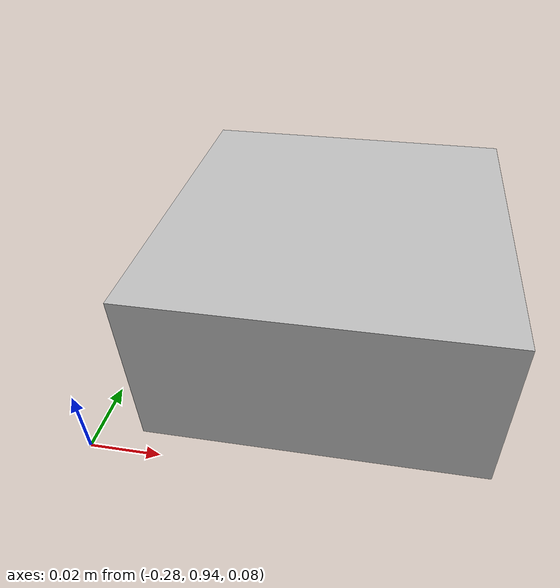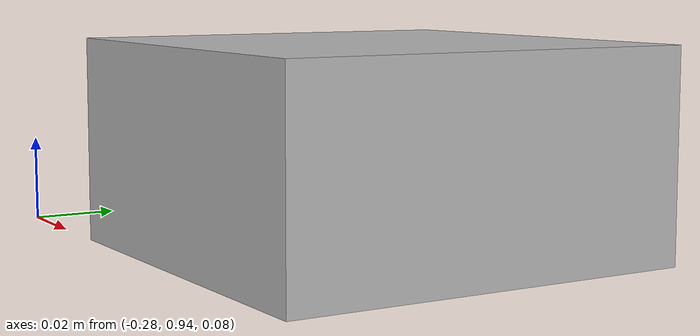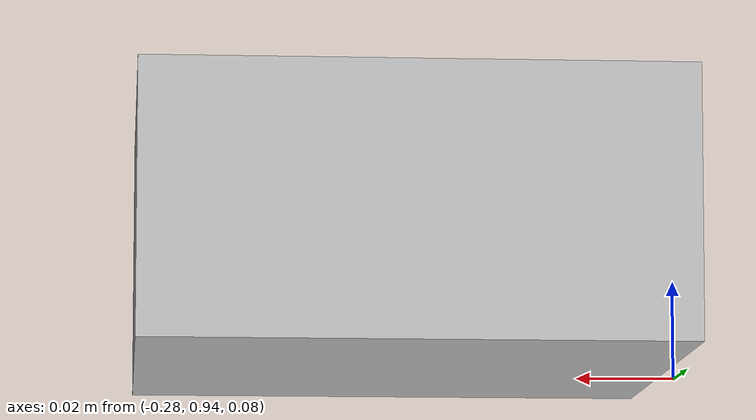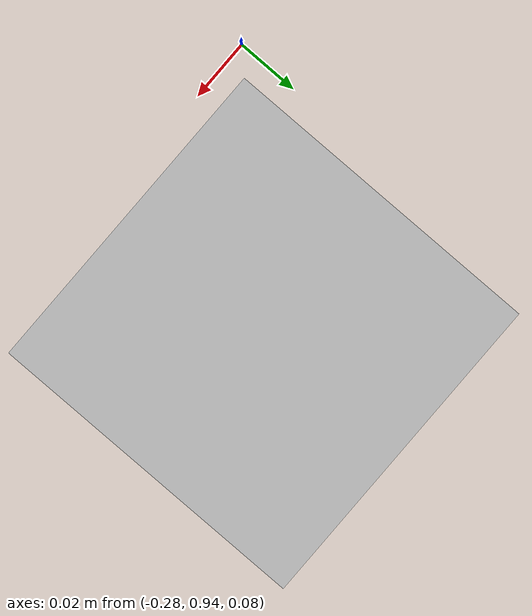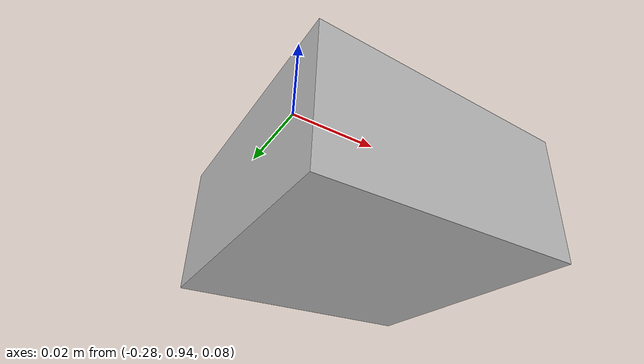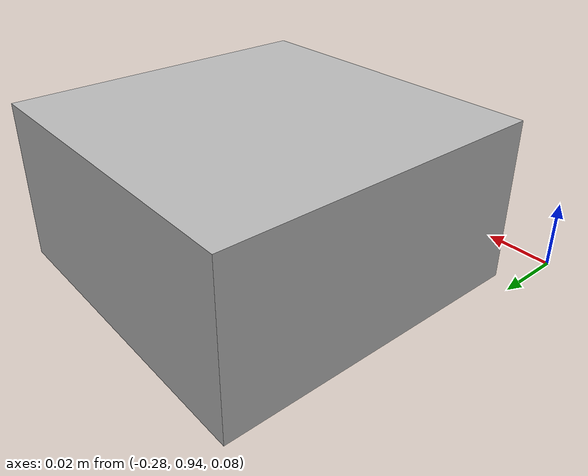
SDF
<?xml version='1.0'?>
<sdf version="1.4">
  <model name="my_model">
    <pose>-0.22 1 0.1 0 0 0</pose>
    <static>true</static>
    <link name="link">
      <inertial>
        <mass>1.0</mass>
        <inertia> <!-- inertias are tricky to compute -->
          <ixx>0.083</ixx>       <!-- for a box: ixx = 0.083 * mass * (y*y + z*z) -->
          <ixy>0.0</ixy>         <!-- for a box: ixy = 0 -->
          <ixz>0.0</ixz>         <!-- for a box: ixz = 0 -->
          <iyy>0.083</iyy>       <!-- for a box: iyy = 0.083 * mass * (x*x + z*z) -->
          <iyz>0.0</iyz>         <!-- for a box: iyz = 0 -->
          <izz>0.083</izz>       <!-- for a box: izz = 0.083 * mass * (x*x + y*y) -->
        </inertia>
      </inertial>
      <collision name="collision">
        <geometry>
          <box>
            <size>0.1 0.1 0.05</size>
          </box>
        </geometry>
 	<laser_retro>155</laser_retro>
      </collision>
      <visual name="visual">
        <geometry>
          <box>
            <size>0.1 0.1 0.05</size>
          </box>
        </geometry>
        <laser_retro>155</laser_retro>
      </visual>
    </link>
  </model>
</sdf>
